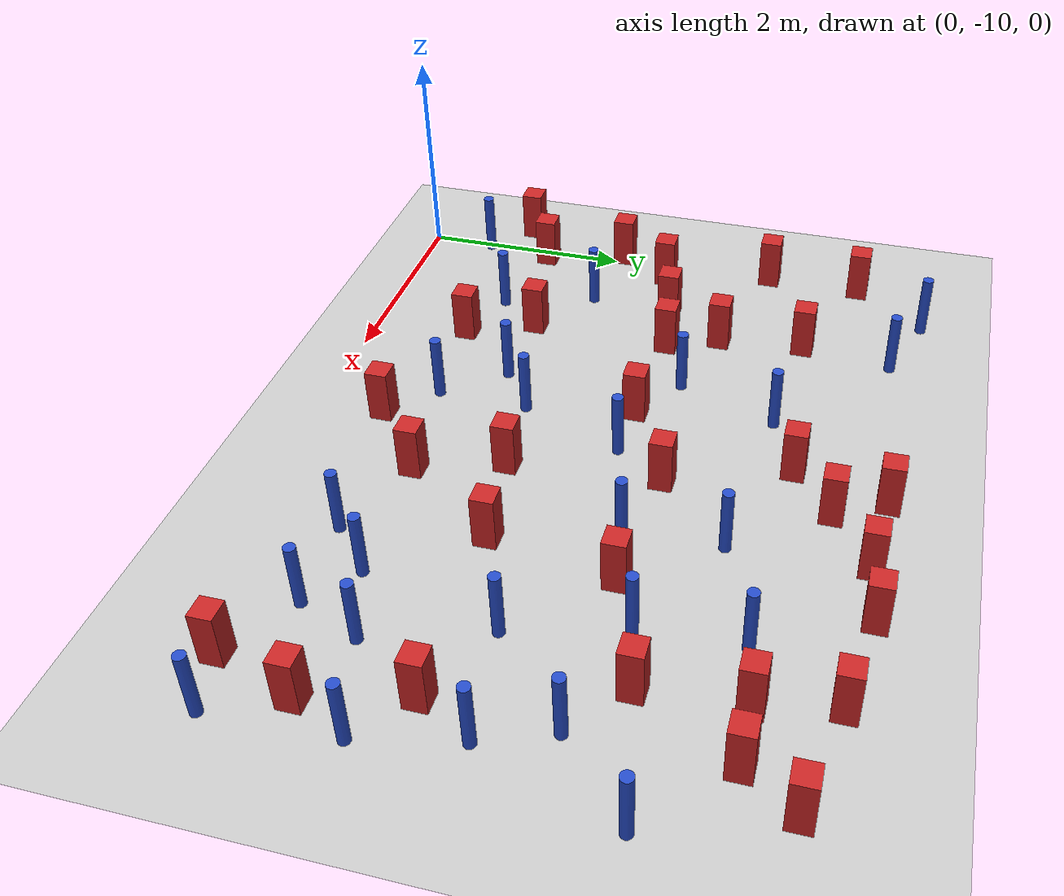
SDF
<sdf version="1.6">
 <world name="default">
  <model name="ground_plane">
   <static>1</static>
   <link name="link">
    <collision name="collision">
     <geometry><plane><normal>0 0 1</normal><size>100 100</size></plane></geometry>
     <surface><friction><ode><mu>100</mu><mu2>50</mu2></ode></friction></surface>
    </collision>
    <visual name="visual">
     <cast_shadows>0</cast_shadows>
     <geometry><plane><normal>0 0 1</normal><size>100 100</size></plane></geometry>
     <material>
      <ambient>1.0 1.0 1.0 1.0</ambient>
      <diffuse>0.8 0.8 0.8 1.0</diffuse>
      <specular>0.01 0.01 0.01 1.000000</specular>
     </material>
    </visual>
   </link>
  </model>
  <model name="square_post_obstacle1">
   <static>true</static>
   <pose>1.34976444259 -7.16266621479 8.22691968438e-08 7.2212513382e-06 -7.54495500217e-07 2.29674213826e-05</pose>
   <link name="link">
    <pose>0 0 0.25 0 -0 0</pose>
    <inertial>
     <mass>100</mass>
     <inertia>
      <ixx>0.166667</ixx>
      <ixy>0</ixy>
      <ixz>0</ixz>
      <iyy>0.166667</iyy>
      <iyz>0</iyz>
      <izz>0.166667</izz>
     </inertia>
    </inertial>
    <collision name="collision"><geometry><box><size>.2 .2 .5</size></box></geometry></collision>
    <visual name="visual">
     <geometry><box><size>.2 .2 .5</size></box></geometry>
     <material>
      <script><name>Gazebo/Red</name><uri>file://media/materials/scripts/gazebo.material</uri></script>
     </material>
    </visual>
   </link>
  </model>
  <model name="pole_obstacle4">
   <static>true</static>
   <pose>0.0471229709051 -9.3753185863 2.88873142074e-08 -9.90536690996e-09 4.60219948962e-07 -1.20965994979e-07</pose>
   <link name="link">
    <pose>0 0 0.3 0 -0 0</pose>
    <inertial>
     <mass>1</mass>
     <inertia><ixx>0.145833</ixx><ixy>0</ixy><ixz>0</ixz><iyy>0.145833</iyy><iyz>0</iyz><izz>0.125</izz></inertia>
    </inertial>
    <collision name="collision">
     <geometry><cylinder><radius>0.05</radius><length>.6</length></cylinder></geometry>
    </collision>
    <visual name="visual">
     <geometry><cylinder><radius>0.05</radius><length>.6</length></cylinder></geometry>
     <material>
      <script><name>Gazebo/Blue</name><uri>file://media/materials/scripts/gazebo.material</uri></script>
     </material>
    </visual>
   </link>
  </model>
  <model name="pole_obstacle7">
   <static>true</static>
   <pose>3.92263139561 -6.95824862448 2.88873142074e-08 -9.90536689859e-09 4.60219948989e-07 -1.20965994961e-07</pose>
   <link name="link">
    <pose>0 0 0.3 0 -0 0</pose>
    <inertial>
     <mass>1</mass>
     <inertia><ixx>0.145833</ixx><ixy>0</ixy><ixz>0</ixz><iyy>0.145833</iyy><iyz>0</iyz><izz>0.125</izz></inertia>
    </inertial>
    <collision name="collision">
     <geometry><cylinder><radius>0.05</radius><length>.6</length></cylinder></geometry>
    </collision>
    <visual name="visual">
     <geometry><cylinder><radius>0.05</radius><length>.6</length></cylinder></geometry>
     <material>
      <script><name>Gazebo/Blue</name><uri>file://media/materials/scripts/gazebo.material</uri></script>
     </material>
    </visual>
   </link>
  </model>
  <model name="pole_obstacle8">
   <static>true</static>
   <pose>6.26670397451 -8.30365633751 2.88873142074e-08 -9.9053668967e-09 4.60219948993e-07 -1.20965994957e-07</pose>
   <link name="link">
    <pose>0 0 0.3 0 -0 0</pose>
    <inertial>
     <mass>1</mass>
     <inertia><ixx>0.145833</ixx><ixy>0</ixy><ixz>0</ixz><iyy>0.145833</iyy><iyz>0</iyz><izz>0.125</izz></inertia>
    </inertial>
    <collision name="collision">
     <geometry><cylinder><radius>0.05</radius><length>.6</length></cylinder></geometry>
    </collision>
    <visual name="visual">
     <geometry><cylinder><radius>0.05</radius><length>.6</length></cylinder></geometry>
     <material>
      <script><name>Gazebo/Blue</name><uri>file://media/materials/scripts/gazebo.material</uri></script>
     </material>
    </visual>
   </link>
  </model>
  <model name="square_post_obstacle7">
   <static>true</static>
   <pose>-0.357960590281 -9.00568446626 8.22691968438e-08 7.22125133819e-06 -7.54495500217e-07 2.29674213826e-05</pose>
   <link name="link">
    <pose>0 0 0.25 0 -0 0</pose>
    <inertial>
     <mass>100</mass>
     <inertia>
      <ixx>0.166667</ixx>
      <ixy>0</ixy>
      <ixz>0</ixz>
      <iyy>0.166667</iyy>
      <iyz>0</iyz>
      <izz>0.166667</izz>
     </inertia>
    </inertial>
    <collision name="collision"><geometry><box><size>.2 .2 .5</size></box></geometry></collision>
    <visual name="visual">
     <geometry><box><size>.2 .2 .5</size></box></geometry>
     <material>
      <script><name>Gazebo/Red</name><uri>file://media/materials/scripts/gazebo.material</uri></script>
     </material>
    </visual>
   </link>
  </model>
  <model name="pole_obstacle13">
   <static>true</static>
   <pose>4.4009780181 -9.17855342326 2.88873142074e-08 -9.9053668967e-09 4.60219948993e-07 -1.20965994957e-07</pose>
   <link name="link">
    <pose>0 0 0.3 0 -0 0</pose>
    <inertial>
     <mass>1</mass>
     <inertia><ixx>0.145833</ixx><ixy>0</ixy><ixz>0</ixz><iyy>0.145833</iyy><iyz>0</iyz><izz>0.125</izz></inertia>
    </inertial>
    <collision name="collision">
     <geometry><cylinder><radius>0.05</radius><length>.6</length></cylinder></geometry>
    </collision>
    <visual name="visual">
     <geometry><cylinder><radius>0.05</radius><length>.6</length></cylinder></geometry>
     <material>
      <script><name>Gazebo/Blue</name><uri>file://media/materials/scripts/gazebo.material</uri></script>
     </material>
    </visual>
   </link>
  </model>
  <model name="pole_obstacle22">
   <static>true</static>
   <pose>5.11384237287 -7.59006557661 2.88873142074e-08 -9.90536690842e-09 4.60219948965e-07 -1.20965994976e-07</pose>
   <link name="link">
    <pose>0 0 0.3 0 -0 0</pose>
    <inertial>
     <mass>1</mass>
     <inertia><ixx>0.145833</ixx><ixy>0</ixy><ixz>0</ixz><iyy>0.145833</iyy><iyz>0</iyz><izz>0.125</izz></inertia>
    </inertial>
    <collision name="collision">
     <geometry><cylinder><radius>0.05</radius><length>.6</length></cylinder></geometry>
    </collision>
    <visual name="visual">
     <geometry><cylinder><radius>0.05</radius><length>.6</length></cylinder></geometry>
     <material>
      <script><name>Gazebo/Blue</name><uri>file://media/materials/scripts/gazebo.material</uri></script>
     </material>
    </visual>
   </link>
  </model>
  <model name="pole_obstacle23">
   <static>true</static>
   <pose>4.80086659203 -8.80640798107 2.88873142074e-08 -9.9053668967e-09 4.60219948993e-07 -1.20965994957e-07</pose>
   <link name="link">
    <pose>0 0 0.3 0 -0 0</pose>
    <inertial>
     <mass>1</mass>
     <inertia><ixx>0.145833</ixx><ixy>0</ixy><ixz>0</ixz><iyy>0.145833</iyy><iyz>0</iyz><izz>0.125</izz></inertia>
    </inertial>
    <collision name="collision">
     <geometry><cylinder><radius>0.05</radius><length>.6</length></cylinder></geometry>
    </collision>
    <visual name="visual">
     <geometry><cylinder><radius>0.05</radius><length>.6</length></cylinder></geometry>
     <material>
      <script><name>Gazebo/Blue</name><uri>file://media/materials/scripts/gazebo.material</uri></script>
     </material>
    </visual>
   </link>
  </model>
  <model name="square_post_obstacle18">
   <static>true</static>
   <pose>6.10811297865 -5.22534100473 8.22691968438e-08 7.2212513382e-06 -7.54495500217e-07 2.29674213826e-05</pose>
   <link name="link">
    <pose>0 0 0.25 0 -0 0</pose>
    <inertial>
     <mass>100</mass>
     <inertia>
      <ixx>0.166667</ixx>
      <ixy>0</ixy>
      <ixz>0</ixz>
      <iyy>0.166667</iyy>
      <iyz>0</iyz>
      <izz>0.166667</izz>
     </inertia>
    </inertial>
    <collision name="collision"><geometry><box><size>.2 .2 .5</size></box></geometry></collision>
    <visual name="visual">
     <geometry><box><size>.2 .2 .5</size></box></geometry>
     <material>
      <script><name>Gazebo/Red</name><uri>file://media/materials/scripts/gazebo.material</uri></script>
     </material>
    </visual>
   </link>
  </model>
  <model name="pole_obstacle25">
   <static>true</static>
   <pose>2.13632343708 -8.49517083925 2.88873142074e-08 -9.90536692318e-09 4.6021994893e-07 -1.20965994988e-07</pose>
   <link name="link">
    <pose>0 0 0.3 0 -0 0</pose>
    <inertial>
     <mass>1</mass>
     <inertia><ixx>0.145833</ixx><ixy>0</ixy><ixz>0</ixz><iyy>0.145833</iyy><iyz>0</iyz><izz>0.125</izz></inertia>
    </inertial>
    <collision name="collision">
     <geometry><cylinder><radius>0.05</radius><length>.6</length></cylinder></geometry>
    </collision>
    <visual name="visual">
     <geometry><cylinder><radius>0.05</radius><length>.6</length></cylinder></geometry>
     <material>
      <script><name>Gazebo/Blue</name><uri>file://media/materials/scripts/gazebo.material</uri></script>
     </material>
    </visual>
   </link>
  </model>
  <model name="square_post_obstacle25">
   <static>true</static>
   <pose>3.81873314155 -4.985388653 8.22691968438e-08 7.2212513382e-06 -7.54495500217e-07 2.29674213826e-05</pose>
   <link name="link">
    <pose>0 0 0.25 0 -0 0</pose>
    <inertial>
     <mass>100</mass>
     <inertia>
      <ixx>0.166667</ixx>
      <ixy>0</ixy>
      <ixz>0</ixz>
      <iyy>0.166667</iyy>
      <iyz>0</iyz>
      <izz>0.166667</izz>
     </inertia>
    </inertial>
    <collision name="collision"><geometry><box><size>.2 .2 .5</size></box></geometry></collision>
    <visual name="visual">
     <geometry><box><size>.2 .2 .5</size></box></geometry>
     <material>
      <script><name>Gazebo/Red</name><uri>file://media/materials/scripts/gazebo.material</uri></script>
     </material>
    </visual>
   </link>
  </model>
  <model name="pole_obstacle33">
   <static>true</static>
   <pose>5.21338102896 -9.13032891597 2.88873142074e-08 -9.9053668967e-09 4.60219948993e-07 -1.20965994957e-07</pose>
   <link name="link">
    <pose>0 0 0.3 0 -0 0</pose>
    <inertial>
     <mass>1</mass>
     <inertia><ixx>0.145833</ixx><ixy>0</ixy><ixz>0</ixz><iyy>0.145833</iyy><iyz>0</iyz><izz>0.125</izz></inertia>
    </inertial>
    <collision name="collision">
     <geometry><cylinder><radius>0.05</radius><length>.6</length></cylinder></geometry>
    </collision>
    <visual name="visual">
     <geometry><cylinder><radius>0.05</radius><length>.6</length></cylinder></geometry>
     <material>
      <script><name>Gazebo/Blue</name><uri>file://media/materials/scripts/gazebo.material</uri></script>
     </material>
    </visual>
   </link>
  </model>
  <model name="pole_obstacle40">
   <static>true</static>
   <pose>5.43500808425 -8.57817081193 2.88873142074e-08 -9.9053668967e-09 4.60219948993e-07 -1.20965994957e-07</pose>
   <link name="link">
    <pose>0 0 0.3 0 -0 0</pose>
    <inertial>
     <mass>1</mass>
     <inertia><ixx>0.145833</ixx><ixy>0</ixy><ixz>0</ixz><iyy>0.145833</iyy><iyz>0</iyz><izz>0.125</izz></inertia>
    </inertial>
    <collision name="collision">
     <geometry><cylinder><radius>0.05</radius><length>.6</length></cylinder></geometry>
    </collision>
    <visual name="visual">
     <geometry><cylinder><radius>0.05</radius><length>.6</length></cylinder></geometry>
     <material>
      <script><name>Gazebo/Blue</name><uri>file://media/materials/scripts/gazebo.material</uri></script>
     </material>
    </visual>
   </link>
  </model>
  <model name="square_post_obstacle32">
   <static>true</static>
   <pose>3.23322665385 -6.78148725426 8.22691968438e-08 7.22125133819e-06 -7.54495500217e-07 2.29674213826e-05</pose>
   <link name="link">
    <pose>0 0 0.25 0 -0 0</pose>
    <inertial>
     <mass>100</mass>
     <inertia>
      <ixx>0.166667</ixx>
      <ixy>0</ixy>
      <ixz>0</ixz>
      <iyy>0.166667</iyy>
      <iyz>0</iyz>
      <izz>0.166667</izz>
     </inertia>
    </inertial>
    <collision name="collision"><geometry><box><size>.2 .2 .5</size></box></geometry></collision>
    <visual name="visual">
     <geometry><box><size>.2 .2 .5</size></box></geometry>
     <material>
      <script><name>Gazebo/Red</name><uri>file://media/materials/scripts/gazebo.material</uri></script>
     </material>
    </visual>
   </link>
  </model>
  <model name="square_post_obstacle39">
   <static>true</static>
   <pose>-0.0275031125796 -5.48431658548 8.22691968438e-08 7.22125133819e-06 -7.54495500217e-07 2.29674213826e-05</pose>
   <link name="link">
    <pose>0 0 0.25 0 -0 0</pose>
    <inertial>
     <mass>100</mass>
     <inertia>
      <ixx>0.166667</ixx>
      <ixy>0</ixy>
      <ixz>0</ixz>
      <iyy>0.166667</iyy>
      <iyz>0</iyz>
      <izz>0.166667</izz>
     </inertia>
    </inertial>
    <collision name="collision"><geometry><box><size>.2 .2 .5</size></box></geometry></collision>
    <visual name="visual">
     <geometry><box><size>.2 .2 .5</size></box></geometry>
     <material>
      <script><name>Gazebo/Red</name><uri>file://media/materials/scripts/gazebo.material</uri></script>
     </material>
    </visual>
   </link>
  </model>
  <model name="square_post_obstacle40">
   <static>true</static>
   <pose>3.58850300028 -8.86359649826 8.22691968438e-08 7.22125133819e-06 -7.54495500217e-07 2.29674213826e-05</pose>
   <link name="link">
    <pose>0 0 0.25 0 -0 0</pose>
    <inertial>
     <mass>100</mass>
     <inertia>
      <ixx>0.166667</ixx>
      <ixy>0</ixy>
      <ixz>0</ixz>
      <iyy>0.166667</iyy>
      <iyz>0</iyz>
      <izz>0.166667</izz>
     </inertia>
    </inertial>
    <collision name="collision"><geometry><box><size>.2 .2 .5</size></box></geometry></collision>
    <visual name="visual">
     <geometry><box><size>.2 .2 .5</size></box></geometry>
     <material>
      <script><name>Gazebo/Red</name><uri>file://media/materials/scripts/gazebo.material</uri></script>
     </material>
    </visual>
   </link>
  </model>
  <model name="square_post_obstacle49">
   <static>true</static>
   <pose>5.83121184268 -7.92832120423 8.22691968438e-08 7.2212513382e-06 -7.54495500217e-07 2.29674213826e-05</pose>
   <link name="link">
    <pose>0 0 0.25 0 -0 0</pose>
    <inertial>
     <mass>100</mass>
     <inertia>
      <ixx>0.166667</ixx>
      <ixy>0</ixy>
      <ixz>0</ixz>
      <iyy>0.166667</iyy>
      <iyz>0</iyz>
      <izz>0.166667</izz>
     </inertia>
    </inertial>
    <collision name="collision"><geometry><box><size>.2 .2 .5</size></box></geometry></collision>
    <visual name="visual">
     <geometry><box><size>.2 .2 .5</size></box></geometry>
     <material>
      <script><name>Gazebo/Red</name><uri>file://media/materials/scripts/gazebo.material</uri></script>
     </material>
    </visual>
   </link>
  </model>
  <model name="square_post_obstacle50">
   <static>true</static>
   <pose>4.22033398872 -7.97998142098 8.22691968438e-08 7.2212513382e-06 -7.54495500217e-07 2.29674213826e-05</pose>
   <link name="link">
    <pose>0 0 0.25 0 -0 0</pose>
    <inertial>
     <mass>100</mass>
     <inertia>
      <ixx>0.166667</ixx>
      <ixy>0</ixy>
      <ixz>0</ixz>
      <iyy>0.166667</iyy>
      <iyz>0</iyz>
      <izz>0.166667</izz>
     </inertia>
    </inertial>
    <collision name="collision"><geometry><box><size>.2 .2 .5</size></box></geometry></collision>
    <visual name="visual">
     <geometry><box><size>.2 .2 .5</size></box></geometry>
     <material>
      <script><name>Gazebo/Red</name><uri>file://media/materials/scripts/gazebo.material</uri></script>
     </material>
    </visual>
   </link>
  </model>
  <model name="pole_obstacle68">
   <static>true</static>
   <pose>1.1815871107 -5.0591975514 2.88873142074e-08 -9.90536689852e-09 4.60219948989e-07 -1.2096599496e-07</pose>
   <link name="link">
    <pose>0 0 0.3 0 -0 0</pose>
    <inertial>
     <mass>1</mass>
     <inertia><ixx>0.145833</ixx><ixy>0</ixy><ixz>0</ixz><iyy>0.145833</iyy><iyz>0</iyz><izz>0.125</izz></inertia>
    </inertial>
    <collision name="collision">
     <geometry><cylinder><radius>0.05</radius><length>.6</length></cylinder></geometry>
    </collision>
    <visual name="visual">
     <geometry><cylinder><radius>0.05</radius><length>.6</length></cylinder></geometry>
     <material>
      <script><name>Gazebo/Blue</name><uri>file://media/materials/scripts/gazebo.material</uri></script>
     </material>
    </visual>
   </link>
  </model>
  <model name="square_post_obstacle53">
   <static>true</static>
   <pose>2.84721252517 -5.72974179798 8.22691968438e-08 7.22125133819e-06 -7.54495500217e-07 2.29674213826e-05</pose>
   <link name="link">
    <pose>0 0 0.25 0 -0 0</pose>
    <inertial>
     <mass>100</mass>
     <inertia>
      <ixx>0.166667</ixx>
      <ixy>0</ixy>
      <ixz>0</ixz>
      <iyy>0.166667</iyy>
      <iyz>0</iyz>
      <izz>0.166667</izz>
     </inertia>
    </inertial>
    <collision name="collision"><geometry><box><size>.2 .2 .5</size></box></geometry></collision>
    <visual name="visual">
     <geometry><box><size>.2 .2 .5</size></box></geometry>
     <material>
      <script><name>Gazebo/Red</name><uri>file://media/materials/scripts/gazebo.material</uri></script>
     </material>
    </visual>
   </link>
  </model>
  <model name="square_post_obstacle55">
   <static>true</static>
   <pose>1.1520583302 -6.68716666345 8.22691968438e-08 7.2212513382e-06 -7.54495500217e-07 2.29674213826e-05</pose>
   <link name="link">
    <pose>0 0 0.25 0 -0 0</pose>
    <inertial>
     <mass>100</mass>
     <inertia>
      <ixx>0.166667</ixx>
      <ixy>0</ixy>
      <ixz>0</ixz>
      <iyy>0.166667</iyy>
      <iyz>0</iyz>
      <izz>0.166667</izz>
     </inertia>
    </inertial>
    <collision name="collision"><geometry><box><size>.2 .2 .5</size></box></geometry></collision>
    <visual name="visual">
     <geometry><box><size>.2 .2 .5</size></box></geometry>
     <material>
      <script><name>Gazebo/Red</name><uri>file://media/materials/scripts/gazebo.material</uri></script>
     </material>
    </visual>
   </link>
  </model>
  <model name="pole_obstacle71">
   <static>true</static>
   <pose>5.8572790613 -6.89138354037 2.88873142074e-08 -9.90536690842e-09 4.60219948965e-07 -1.20965994976e-07</pose>
   <link name="link">
    <pose>0 0 0.3 0 -0 0</pose>
    <inertial>
     <mass>1</mass>
     <inertia><ixx>0.145833</ixx><ixy>0</ixy><ixz>0</ixz><iyy>0.145833</iyy><iyz>0</iyz><izz>0.125</izz></inertia>
    </inertial>
    <collision name="collision">
     <geometry><cylinder><radius>0.05</radius><length>.6</length></cylinder></geometry>
    </collision>
    <visual name="visual">
     <geometry><cylinder><radius>0.05</radius><length>.6</length></cylinder></geometry>
     <material>
      <script><name>Gazebo/Blue</name><uri>file://media/materials/scripts/gazebo.material</uri></script>
     </material>
    </visual>
   </link>
  </model>
  <model name="pole_obstacle73">
   <static>true</static>
   <pose>0.480922882163 -4.81654892487 2.88873142074e-08 -9.90536689616e-09 4.60219948994e-07 -1.20965994955e-07</pose>
   <link name="link">
    <pose>0 0 0.3 0 -0 0</pose>
    <inertial>
     <mass>1</mass>
     <inertia><ixx>0.145833</ixx><ixy>0</ixy><ixz>0</ixz><iyy>0.145833</iyy><iyz>0</iyz><izz>0.125</izz></inertia>
    </inertial>
    <collision name="collision">
     <geometry><cylinder><radius>0.05</radius><length>.6</length></cylinder></geometry>
    </collision>
    <visual name="visual">
     <geometry><cylinder><radius>0.05</radius><length>.6</length></cylinder></geometry>
     <material>
      <script><name>Gazebo/Blue</name><uri>file://media/materials/scripts/gazebo.material</uri></script>
     </material>
    </visual>
   </link>
  </model>
  <model name="square_post_obstacle68">
   <static>true</static>
   <pose>5.3218380934 -5.67278428079 8.22691968438e-08 7.2212513382e-06 -7.54495500217e-07 2.29674213826e-05</pose>
   <link name="link">
    <pose>0 0 0.25 0 -0 0</pose>
    <inertial>
     <mass>100</mass>
     <inertia>
      <ixx>0.166667</ixx>
      <ixy>0</ixy>
      <ixz>0</ixz>
      <iyy>0.166667</iyy>
      <iyz>0</iyz>
      <izz>0.166667</izz>
     </inertia>
    </inertial>
    <collision name="collision"><geometry><box><size>.2 .2 .5</size></box></geometry></collision>
    <visual name="visual">
     <geometry><box><size>.2 .2 .5</size></box></geometry>
     <material>
      <script><name>Gazebo/Red</name><uri>file://media/materials/scripts/gazebo.material</uri></script>
     </material>
    </visual>
   </link>
  </model>
  <model name="square_post_obstacle79">
   <static>true</static>
   <pose>2.39853437666 -7.20955045813 8.22691968438e-08 7.2212513382e-06 -7.54495500217e-07 2.29674213826e-05</pose>
   <link name="link">
    <pose>0 0 0.25 0 -0 0</pose>
    <inertial>
     <mass>100</mass>
     <inertia>
      <ixx>0.166667</ixx>
      <ixy>0</ixy>
      <ixz>0</ixz>
      <iyy>0.166667</iyy>
      <iyz>0</iyz>
      <izz>0.166667</izz>
     </inertia>
    </inertial>
    <collision name="collision"><geometry><box><size>.2 .2 .5</size></box></geometry></collision>
    <visual name="visual">
     <geometry><box><size>.2 .2 .5</size></box></geometry>
     <material>
      <script><name>Gazebo/Red</name><uri>file://media/materials/scripts/gazebo.material</uri></script>
     </material>
    </visual>
   </link>
  </model>
  <model name="pole_obstacle103">
   <static>true</static>
   <pose>2.25066144728 -5.99067226006 2.88873142074e-08 -9.90536689859e-09 4.60219948989e-07 -1.20965994961e-07</pose>
   <link name="link">
    <pose>0 0 0.3 0 -0 0</pose>
    <inertial>
     <mass>1</mass>
     <inertia><ixx>0.145833</ixx><ixy>0</ixy><ixz>0</ixz><iyy>0.145833</iyy><iyz>0</iyz><izz>0.125</izz></inertia>
    </inertial>
    <collision name="collision">
     <geometry><cylinder><radius>0.05</radius><length>.6</length></cylinder></geometry>
    </collision>
    <visual name="visual">
     <geometry><cylinder><radius>0.05</radius><length>.6</length></cylinder></geometry>
     <material>
      <script><name>Gazebo/Blue</name><uri>file://media/materials/scripts/gazebo.material</uri></script>
     </material>
    </visual>
   </link>
  </model>
  <model name="square_post_obstacle98">
   <static>true</static>
   <pose>3.29817321597 -5.35506112153 8.22691968438e-08 7.22125133819e-06 -7.54495500217e-07 2.29674213826e-05</pose>
   <link name="link">
    <pose>0 0 0.25 0 -0 0</pose>
    <inertial>
     <mass>100</mass>
     <inertia>
      <ixx>0.166667</ixx>
      <ixy>0</ixy>
      <ixz>0</ixz>
      <iyy>0.166667</iyy>
      <iyz>0</iyz>
      <izz>0.166667</izz>
     </inertia>
    </inertial>
    <collision name="collision"><geometry><box><size>.2 .2 .5</size></box></geometry></collision>
    <visual name="visual">
     <geometry><box><size>.2 .2 .5</size></box></geometry>
     <material>
      <script><name>Gazebo/Red</name><uri>file://media/materials/scripts/gazebo.material</uri></script>
     </material>
    </visual>
   </link>
  </model>
  <model name="square_post_obstacle107">
   <static>true</static>
   <pose>2.94494231042 -9.39853002465 8.22691968438e-08 7.22125133819e-06 -7.54495500217e-07 2.29674213826e-05</pose>
   <link name="link">
    <pose>0 0 0.25 0 -0 0</pose>
    <inertial>
     <mass>100</mass>
     <inertia>
      <ixx>0.166667</ixx>
      <ixy>0</ixy>
      <ixz>0</ixz>
      <iyy>0.166667</iyy>
      <iyz>0</iyz>
      <izz>0.166667</izz>
     </inertia>
    </inertial>
    <collision name="collision"><geometry><box><size>.2 .2 .5</size></box></geometry></collision>
    <visual name="visual">
     <geometry><box><size>.2 .2 .5</size></box></geometry>
     <material>
      <script><name>Gazebo/Red</name><uri>file://media/materials/scripts/gazebo.material</uri></script>
     </material>
    </visual>
   </link>
  </model>
  <model name="square_post_obstacle111">
   <static>true</static>
   <pose>1.33769436635 -8.47378284706 8.22691968438e-08 7.22125133819e-06 -7.54495500217e-07 2.29674213826e-05</pose>
   <link name="link">
    <pose>0 0 0.25 0 -0 0</pose>
    <inertial>
     <mass>100</mass>
     <inertia>
      <ixx>0.166667</ixx>
      <ixy>0</ixy>
      <ixz>0</ixz>
      <iyy>0.166667</iyy>
      <iyz>0</iyz>
      <izz>0.166667</izz>
     </inertia>
    </inertial>
    <collision name="collision"><geometry><box><size>.2 .2 .5</size></box></geometry></collision>
    <visual name="visual">
     <geometry><box><size>.2 .2 .5</size></box></geometry>
     <material>
      <script><name>Gazebo/Red</name><uri>file://media/materials/scripts/gazebo.material</uri></script>
     </material>
    </visual>
   </link>
  </model>
  <model name="pole_obstacle116">
   <static>true</static>
   <pose>3.85425104106 -6.13127338022 2.88873142074e-08 -9.90536689859e-09 4.60219948989e-07 -1.20965994961e-07</pose>
   <link name="link">
    <pose>0 0 0.3 0 -0 0</pose>
    <inertial>
     <mass>1</mass>
     <inertia><ixx>0.145833</ixx><ixy>0</ixy><ixz>0</ixz><iyy>0.145833</iyy><iyz>0</iyz><izz>0.125</izz></inertia>
    </inertial>
    <collision name="collision">
     <geometry><cylinder><radius>0.05</radius><length>.6</length></cylinder></geometry>
    </collision>
    <visual name="visual">
     <geometry><cylinder><radius>0.05</radius><length>.6</length></cylinder></geometry>
     <material>
      <script><name>Gazebo/Blue</name><uri>file://media/materials/scripts/gazebo.material</uri></script>
     </material>
    </visual>
   </link>
  </model>
  <model name="square_post_obstacle118">
   <static>true</static>
   <pose>0.126069835648 -8.71049284232 8.22691968438e-08 7.22125133819e-06 -7.54495500217e-07 2.29674213826e-05</pose>
   <link name="link">
    <pose>0 0 0.25 0 -0 0</pose>
    <inertial>
     <mass>100</mass>
     <inertia>
      <ixx>0.166667</ixx>
      <ixy>0</ixy>
      <ixz>0</ixz>
      <iyy>0.166667</iyy>
      <iyz>0</iyz>
      <izz>0.166667</izz>
     </inertia>
    </inertial>
    <collision name="collision"><geometry><box><size>.2 .2 .5</size></box></geometry></collision>
    <visual name="visual">
     <geometry><box><size>.2 .2 .5</size></box></geometry>
     <material>
      <script><name>Gazebo/Red</name><uri>file://media/materials/scripts/gazebo.material</uri></script>
     </material>
    </visual>
   </link>
  </model>
  <model name="square_post_obstacle119">
   <static>true</static>
   <pose>5.39532233853 -6.502309828 8.22691968438e-08 7.22125133819e-06 -7.54495500217e-07 2.29674213826e-05</pose>
   <link name="link">
    <pose>0 0 0.25 0 -0 0</pose>
    <inertial>
     <mass>100</mass>
     <inertia>
      <ixx>0.166667</ixx>
      <ixy>0</ixy>
      <ixz>0</ixz>
      <iyy>0.166667</iyy>
      <iyz>0</iyz>
      <izz>0.166667</izz>
     </inertia>
    </inertial>
    <collision name="collision"><geometry><box><size>.2 .2 .5</size></box></geometry></collision>
    <visual name="visual">
     <geometry><box><size>.2 .2 .5</size></box></geometry>
     <material>
      <script><name>Gazebo/Red</name><uri>file://media/materials/scripts/gazebo.material</uri></script>
     </material>
    </visual>
   </link>
  </model>
  <model name="pole_obstacle122">
   <static>true</static>
   <pose>1.01902021092 -8.89545630741 2.88873142074e-08 -9.90536690572e-09 4.60219948972e-07 -1.20965994971e-07</pose>
   <link name="link">
    <pose>0 0 0.3 0 -0 0</pose>
    <inertial>
     <mass>1</mass>
     <inertia><ixx>0.145833</ixx><ixy>0</ixy><ixz>0</ixz><iyy>0.145833</iyy><iyz>0</iyz><izz>0.125</izz></inertia>
    </inertial>
    <collision name="collision">
     <geometry><cylinder><radius>0.05</radius><length>.6</length></cylinder></geometry>
    </collision>
    <visual name="visual">
     <geometry><cylinder><radius>0.05</radius><length>.6</length></cylinder></geometry>
     <material>
      <script><name>Gazebo/Blue</name><uri>file://media/materials/scripts/gazebo.material</uri></script>
     </material>
    </visual>
   </link>
  </model>
  <model name="pole_obstacle129">
   <static>true</static>
   <pose>1.91781525567 -6.89734169992 2.88873142074e-08 -9.90536689852e-09 4.60219948989e-07 -1.2096599496e-07</pose>
   <link name="link">
    <pose>0 0 0.3 0 -0 0</pose>
    <inertial>
     <mass>1</mass>
     <inertia><ixx>0.145833</ixx><ixy>0</ixy><ixz>0</ixz><iyy>0.145833</iyy><iyz>0</iyz><izz>0.125</izz></inertia>
    </inertial>
    <collision name="collision">
     <geometry><cylinder><radius>0.05</radius><length>.6</length></cylinder></geometry>
    </collision>
    <visual name="visual">
     <geometry><cylinder><radius>0.05</radius><length>.6</length></cylinder></geometry>
     <material>
      <script><name>Gazebo/Blue</name><uri>file://media/materials/scripts/gazebo.material</uri></script>
     </material>
    </visual>
   </link>
  </model>
  <model name="pole_obstacle130">
   <static>true</static>
   <pose>6.47195243707 -6.27981691743 2.88873142074e-08 -9.90536690842e-09 4.60219948965e-07 -1.20965994976e-07</pose>
   <link name="link">
    <pose>0 0 0.3 0 -0 0</pose>
    <inertial>
     <mass>1</mass>
     <inertia><ixx>0.145833</ixx><ixy>0</ixy><ixz>0</ixz><iyy>0.145833</iyy><iyz>0</iyz><izz>0.125</izz></inertia>
    </inertial>
    <collision name="collision">
     <geometry><cylinder><radius>0.05</radius><length>.6</length></cylinder></geometry>
    </collision>
    <visual name="visual">
     <geometry><cylinder><radius>0.05</radius><length>.6</length></cylinder></geometry>
     <material>
      <script><name>Gazebo/Blue</name><uri>file://media/materials/scripts/gazebo.material</uri></script>
     </material>
    </visual>
   </link>
  </model>
  <model name="pole_obstacle131">
   <static>true</static>
   <pose>0.742777803085 -8.04430499733 2.88873142074e-08 -9.90536687661e-09 4.60219949039e-07 -1.2096599494e-07</pose>
   <link name="link">
    <pose>0 0 0.3 0 -0 0</pose>
    <inertial>
     <mass>1</mass>
     <inertia><ixx>0.145833</ixx><ixy>0</ixy><ixz>0</ixz><iyy>0.145833</iyy><iyz>0</iyz><izz>0.125</izz></inertia>
    </inertial>
    <collision name="collision">
     <geometry><cylinder><radius>0.05</radius><length>.6</length></cylinder></geometry>
    </collision>
    <visual name="visual">
     <geometry><cylinder><radius>0.05</radius><length>.6</length></cylinder></geometry>
     <material>
      <script><name>Gazebo/Blue</name><uri>file://media/materials/scripts/gazebo.material</uri></script>
     </material>
    </visual>
   </link>
  </model>
  <model name="pole_obstacle138">
   <static>true</static>
   <pose>4.86910038969 -6.63911364676 2.88873142074e-08 -9.90536690842e-09 4.60219948965e-07 -1.20965994976e-07</pose>
   <link name="link">
    <pose>0 0 0.3 0 -0 0</pose>
    <inertial>
     <mass>1</mass>
     <inertia><ixx>0.145833</ixx><ixy>0</ixy><ixz>0</ixz><iyy>0.145833</iyy><iyz>0</iyz><izz>0.125</izz></inertia>
    </inertial>
    <collision name="collision">
     <geometry><cylinder><radius>0.05</radius><length>.6</length></cylinder></geometry>
    </collision>
    <visual name="visual">
     <geometry><cylinder><radius>0.05</radius><length>.6</length></cylinder></geometry>
     <material>
      <script><name>Gazebo/Blue</name><uri>file://media/materials/scripts/gazebo.material</uri></script>
     </material>
    </visual>
   </link>
  </model>
  <model name="square_post_obstacle153">
   <static>true</static>
   <pose>-0.041857445279 -6.38329489673 8.22691968438e-08 7.2212513382e-06 -7.54495500217e-07 2.29674213826e-05</pose>
   <link name="link">
    <pose>0 0 0.25 0 -0 0</pose>
    <inertial>
     <mass>100</mass>
     <inertia>
      <ixx>0.166667</ixx>
      <ixy>0</ixy>
      <ixz>0</ixz>
      <iyy>0.166667</iyy>
      <iyz>0</iyz>
      <izz>0.166667</izz>
     </inertia>
    </inertial>
    <collision name="collision"><geometry><box><size>.2 .2 .5</size></box></geometry></collision>
    <visual name="visual">
     <geometry><box><size>.2 .2 .5</size></box></geometry>
     <material>
      <script><name>Gazebo/Red</name><uri>file://media/materials/scripts/gazebo.material</uri></script>
     </material>
    </visual>
   </link>
  </model>
  <model name="pole_obstacle159">
   <static>true</static>
   <pose>2.93179528893 -7.24156973592 2.88873142074e-08 -9.90536689859e-09 4.60219948989e-07 -1.20965994961e-07</pose>
   <link name="link">
    <pose>0 0 0.3 0 -0 0</pose>
    <inertial>
     <mass>1</mass>
     <inertia><ixx>0.145833</ixx><ixy>0</ixy><ixz>0</ixz><iyy>0.145833</iyy><iyz>0</iyz><izz>0.125</izz></inertia>
    </inertial>
    <collision name="collision">
     <geometry><cylinder><radius>0.05</radius><length>.6</length></cylinder></geometry>
    </collision>
    <visual name="visual">
     <geometry><cylinder><radius>0.05</radius><length>.6</length></cylinder></geometry>
     <material>
      <script><name>Gazebo/Blue</name><uri>file://media/materials/scripts/gazebo.material</uri></script>
     </material>
    </visual>
   </link>
  </model>
  <model name="pole_obstacle160">
   <static>true</static>
   <pose>2.55299335019 -9.01728484763 2.88873142074e-08 -9.90536692318e-09 4.6021994893e-07 -1.20965994988e-07</pose>
   <link name="link">
    <pose>0 0 0.3 0 -0 0</pose>
    <inertial>
     <mass>1</mass>
     <inertia><ixx>0.145833</ixx><ixy>0</ixy><ixz>0</ixz><iyy>0.145833</iyy><iyz>0</iyz><izz>0.125</izz></inertia>
    </inertial>
    <collision name="collision">
     <geometry><cylinder><radius>0.05</radius><length>.6</length></cylinder></geometry>
    </collision>
    <visual name="visual">
     <geometry><cylinder><radius>0.05</radius><length>.6</length></cylinder></geometry>
     <material>
      <script><name>Gazebo/Blue</name><uri>file://media/materials/scripts/gazebo.material</uri></script>
     </material>
    </visual>
   </link>
  </model>
  <model name="pole_obstacle161">
   <static>true</static>
   <pose>2.57135297035 -8.18750641322 2.88873142074e-08 -9.90536692318e-09 4.6021994893e-07 -1.20965994988e-07</pose>
   <link name="link">
    <pose>0 0 0.3 0 -0 0</pose>
    <inertial>
     <mass>1</mass>
     <inertia><ixx>0.145833</ixx><ixy>0</ixy><ixz>0</ixz><iyy>0.145833</iyy><iyz>0</iyz><izz>0.125</izz></inertia>
    </inertial>
    <collision name="collision">
     <geometry><cylinder><radius>0.05</radius><length>.6</length></cylinder></geometry>
    </collision>
    <visual name="visual">
     <geometry><cylinder><radius>0.05</radius><length>.6</length></cylinder></geometry>
     <material>
      <script><name>Gazebo/Blue</name><uri>file://media/materials/scripts/gazebo.material</uri></script>
     </material>
    </visual>
   </link>
  </model>
  <model name="square_post_obstacle154">
   <static>true</static>
   <pose>1.59561542214 -9.09038332735 8.22691968438e-08 7.22125133819e-06 -7.54495500217e-07 2.29674213826e-05</pose>
   <link name="link">
    <pose>0 0 0.25 0 -0 0</pose>
    <inertial>
     <mass>100</mass>
     <inertia>
      <ixx>0.166667</ixx>
      <ixy>0</ixy>
      <ixz>0</ixz>
      <iyy>0.166667</iyy>
      <iyz>0</iyz>
      <izz>0.166667</izz>
     </inertia>
    </inertial>
    <collision name="collision"><geometry><box><size>.2 .2 .5</size></box></geometry></collision>
    <visual name="visual">
     <geometry><box><size>.2 .2 .5</size></box></geometry>
     <material>
      <script><name>Gazebo/Red</name><uri>file://media/materials/scripts/gazebo.material</uri></script>
     </material>
    </visual>
   </link>
  </model>
  <model name="square_post_obstacle156">
   <static>true</static>
   <pose>-0.0774381416998 -7.92443004311 8.22691968438e-08 7.2212513382e-06 -7.54495500217e-07 2.29674213826e-05</pose>
   <link name="link">
    <pose>0 0 0.25 0 -0 0</pose>
    <inertial>
     <mass>100</mass>
     <inertia>
      <ixx>0.166667</ixx>
      <ixy>0</ixy>
      <ixz>0</ixz>
      <iyy>0.166667</iyy>
      <iyz>0</iyz>
      <izz>0.166667</izz>
     </inertia>
    </inertial>
    <collision name="collision"><geometry><box><size>.2 .2 .5</size></box></geometry></collision>
    <visual name="visual">
     <geometry><box><size>.2 .2 .5</size></box></geometry>
     <material>
      <script><name>Gazebo/Red</name><uri>file://media/materials/scripts/gazebo.material</uri></script>
     </material>
    </visual>
   </link>
  </model>
  <model name="square_post_obstacle161">
   <static>true</static>
   <pose>3.34755850362 -8.10541488076 8.22691968438e-08 7.22125133819e-06 -7.54495500217e-07 2.29674213826e-05</pose>
   <link name="link">
    <pose>0 0 0.25 0 -0 0</pose>
    <inertial>
     <mass>100</mass>
     <inertia>
      <ixx>0.166667</ixx>
      <ixy>0</ixy>
      <ixz>0</ixz>
      <iyy>0.166667</iyy>
      <iyz>0</iyz>
      <izz>0.166667</izz>
     </inertia>
    </inertial>
    <collision name="collision"><geometry><box><size>.2 .2 .5</size></box></geometry></collision>
    <visual name="visual">
     <geometry><box><size>.2 .2 .5</size></box></geometry>
     <material>
      <script><name>Gazebo/Red</name><uri>file://media/materials/scripts/gazebo.material</uri></script>
     </material>
    </visual>
   </link>
  </model>
  <model name="square_post_obstacle169">
   <static>true</static>
   <pose>1.07262979111 -5.89479525121 8.22691968438e-08 7.2212513382e-06 -7.54495500217e-07 2.29674213826e-05</pose>
   <link name="link">
    <pose>0 0 0.25 0 -0 0</pose>
    <inertial>
     <mass>100</mass>
     <inertia>
      <ixx>0.166667</ixx>
      <ixy>0</ixy>
      <ixz>0</ixz>
      <iyy>0.166667</iyy>
      <iyz>0</iyz>
      <izz>0.166667</izz>
     </inertia>
    </inertial>
    <collision name="collision"><geometry><box><size>.2 .2 .5</size></box></geometry></collision>
    <visual name="visual">
     <geometry><box><size>.2 .2 .5</size></box></geometry>
     <material>
      <script><name>Gazebo/Red</name><uri>file://media/materials/scripts/gazebo.material</uri></script>
     </material>
    </visual>
   </link>
  </model>
  <model name="pole_obstacle180">
   <static>true</static>
   <pose>6.30725831165 -9.39239093414 2.88873142074e-08 -9.9053668967e-09 4.60219948993e-07 -1.20965994957e-07</pose>
   <link name="link">
    <pose>0 0 0.3 0 -0 0</pose>
    <inertial>
     <mass>1</mass>
     <inertia><ixx>0.145833</ixx><ixy>0</ixy><ixz>0</ixz><iyy>0.145833</iyy><iyz>0</iyz><izz>0.125</izz></inertia>
    </inertial>
    <collision name="collision">
     <geometry><cylinder><radius>0.05</radius><length>.6</length></cylinder></geometry>
    </collision>
    <visual name="visual">
     <geometry><cylinder><radius>0.05</radius><length>.6</length></cylinder></geometry>
     <material>
      <script><name>Gazebo/Blue</name><uri>file://media/materials/scripts/gazebo.material</uri></script>
     </material>
    </visual>
   </link>
  </model>
  <model name="square_post_obstacle194">
   <static>true</static>
   <pose>0.794260415714 -7.25709518403 8.22691968438e-08 7.2212513382e-06 -7.54495500217e-07 2.29674213826e-05</pose>
   <link name="link">
    <pose>0 0 0.25 0 -0 0</pose>
    <inertial>
     <mass>100</mass>
     <inertia>
      <ixx>0.166667</ixx>
      <ixy>0</ixy>
      <ixz>0</ixz>
      <iyy>0.166667</iyy>
      <iyz>0</iyz>
      <izz>0.166667</izz>
     </inertia>
    </inertial>
    <collision name="collision"><geometry><box><size>.2 .2 .5</size></box></geometry></collision>
    <visual name="visual">
     <geometry><box><size>.2 .2 .5</size></box></geometry>
     <material>
      <script><name>Gazebo/Red</name><uri>file://media/materials/scripts/gazebo.material</uri></script>
     </material>
    </visual>
   </link>
  </model>
  <model name="square_post_obstacle195">
   <static>true</static>
   <pose>6.05416811389 -8.77878328107 8.22691968438e-08 7.2212513382e-06 -7.54495500217e-07 2.29674213826e-05</pose>
   <link name="link">
    <pose>0 0 0.25 0 -0 0</pose>
    <inertial>
     <mass>100</mass>
     <inertia>
      <ixx>0.166667</ixx>
      <ixy>0</ixy>
      <ixz>0</ixz>
      <iyy>0.166667</iyy>
      <iyz>0</iyz>
      <izz>0.166667</izz>
     </inertia>
    </inertial>
    <collision name="collision"><geometry><box><size>.2 .2 .5</size></box></geometry></collision>
    <visual name="visual">
     <geometry><box><size>.2 .2 .5</size></box></geometry>
     <material>
      <script><name>Gazebo/Red</name><uri>file://media/materials/scripts/gazebo.material</uri></script>
     </material>
    </visual>
   </link>
  </model>
  <model name="square_post_obstacle196">
   <static>true</static>
   <pose>4.41794768593 -6.87148551211 8.22691968438e-08 7.22125133819e-06 -7.54495500217e-07 2.29674213826e-05</pose>
   <link name="link">
    <pose>0 0 0.25 0 -0 0</pose>
    <inertial>
     <mass>100</mass>
     <inertia>
      <ixx>0.166667</ixx>
      <ixy>0</ixy>
      <ixz>0</ixz>
      <iyy>0.166667</iyy>
      <iyz>0</iyz>
      <izz>0.166667</izz>
     </inertia>
    </inertial>
    <collision name="collision"><geometry><box><size>.2 .2 .5</size></box></geometry></collision>
    <visual name="visual">
     <geometry><box><size>.2 .2 .5</size></box></geometry>
     <material>
      <script><name>Gazebo/Red</name><uri>file://media/materials/scripts/gazebo.material</uri></script>
     </material>
    </visual>
   </link>
  </model>
  <model name="pole_obstacle194">
   <static>true</static>
   <pose>6.08140231317 -7.46991613026 2.88873142074e-08 -9.90536690842e-09 4.60219948965e-07 -1.20965994976e-07</pose>
   <link name="link">
    <pose>0 0 0.3 0 -0 0</pose>
    <inertial>
     <mass>1</mass>
     <inertia><ixx>0.145833</ixx><ixy>0</ixy><ixz>0</ixz><iyy>0.145833</iyy><iyz>0</iyz><izz>0.125</izz></inertia>
    </inertial>
    <collision name="collision">
     <geometry><cylinder><radius>0.05</radius><length>.6</length></cylinder></geometry>
    </collision>
    <visual name="visual">
     <geometry><cylinder><radius>0.05</radius><length>.6</length></cylinder></geometry>
     <material>
      <script><name>Gazebo/Blue</name><uri>file://media/materials/scripts/gazebo.material</uri></script>
     </material>
    </visual>
   </link>
  </model>
  <model name="pole_obstacle206">
   <static>true</static>
   <pose>4.80904320108 -5.77827617324 2.88873142074e-08 -9.90536690842e-09 4.60219948965e-07 -1.20965994976e-07</pose>
   <link name="link">
    <pose>0 0 0.3 0 -0 0</pose>
    <inertial>
     <mass>1</mass>
     <inertia><ixx>0.145833</ixx><ixy>0</ixy><ixz>0</ixz><iyy>0.145833</iyy><iyz>0</iyz><izz>0.125</izz></inertia>
    </inertial>
    <collision name="collision">
     <geometry><cylinder><radius>0.05</radius><length>.6</length></cylinder></geometry>
    </collision>
    <visual name="visual">
     <geometry><cylinder><radius>0.05</radius><length>.6</length></cylinder></geometry>
     <material>
      <script><name>Gazebo/Blue</name><uri>file://media/materials/scripts/gazebo.material</uri></script>
     </material>
    </visual>
   </link>
  </model>
  <model name="square_post_obstacle210">
   <static>true</static>
   <pose>5.81515003262 -9.49237003534 8.22691968438e-08 7.22125133819e-06 -7.54495500217e-07 2.29674213826e-05</pose>
   <link name="link">
    <pose>0 0 0.25 0 -0 0</pose>
    <inertial>
     <mass>100</mass>
     <inertia>
      <ixx>0.166667</ixx>
      <ixy>0</ixy>
      <ixz>0</ixz>
      <iyy>0.166667</iyy>
      <iyz>0</iyz>
      <izz>0.166667</izz>
     </inertia>
    </inertial>
    <collision name="collision"><geometry><box><size>.2 .2 .5</size></box></geometry></collision>
    <visual name="visual">
     <geometry><box><size>.2 .2 .5</size></box></geometry>
     <material>
      <script><name>Gazebo/Red</name><uri>file://media/materials/scripts/gazebo.material</uri></script>
     </material>
    </visual>
   </link>
  </model>
  <model name="square_post_obstacle223">
   <static>true</static>
   <pose>4.35008003262 -4.90508003534 8.22691968438e-08 7.2212513382e-06 -7.54495500217e-07 2.29674213826e-05</pose>
   <link name="link">
    <pose>0 0 0.25 0 -0 0</pose>
    <inertial>
     <mass>100</mass>
     <inertia>
      <ixx>0.166667</ixx>
      <ixy>0</ixy>
      <ixz>0</ixz>
      <iyy>0.166667</iyy>
      <iyz>0</iyz>
      <izz>0.166667</izz>
     </inertia>
    </inertial>
    <collision name="collision"><geometry><box><size>.2 .2 .5</size></box></geometry></collision>
    <visual name="visual">
     <geometry><box><size>.2 .2 .5</size></box></geometry>
     <material>
      <script><name>Gazebo/Red</name><uri>file://media/materials/scripts/gazebo.material</uri></script>
     </material>
    </visual>
   </link>
  </model>
  <model name="square_post_obstacle224">
   <static>true</static>
   <pose>0.207831032622 -7.42270003534 8.22691968438e-08 7.2212513382e-06 -7.54495500217e-07 2.29674213826e-05</pose>
   <link name="link">
    <pose>0 0 0.25 0 -0 0</pose>
    <inertial>
     <mass>100</mass>
     <inertia>
      <ixx>0.166667</ixx>
      <ixy>0</ixy>
      <ixz>0</ixz>
      <iyy>0.166667</iyy>
      <iyz>0</iyz>
      <izz>0.166667</izz>
     </inertia>
    </inertial>
    <collision name="collision"><geometry><box><size>.2 .2 .5</size></box></geometry></collision>
    <visual name="visual">
     <geometry><box><size>.2 .2 .5</size></box></geometry>
     <material>
      <script><name>Gazebo/Red</name><uri>file://media/materials/scripts/gazebo.material</uri></script>
     </material>
    </visual>
   </link>
  </model>
  <model name="square_post_obstacle227">
   <static>true</static>
   <pose>5.83868003262 -5.65991003534 8.22691968438e-08 7.2212513382e-06 -7.54495500217e-07 2.29674213826e-05</pose>
   <link name="link">
    <pose>0 0 0.25 0 -0 0</pose>
    <inertial>
     <mass>100</mass>
     <inertia>
      <ixx>0.166667</ixx>
      <ixy>0</ixy>
      <ixz>0</ixz>
      <iyy>0.166667</iyy>
      <iyz>0</iyz>
      <izz>0.166667</izz>
     </inertia>
    </inertial>
    <collision name="collision"><geometry><box><size>.2 .2 .5</size></box></geometry></collision>
    <visual name="visual">
     <geometry><box><size>.2 .2 .5</size></box></geometry>
     <material>
      <script><name>Gazebo/Red</name><uri>file://media/materials/scripts/gazebo.material</uri></script>
     </material>
    </visual>
   </link>
  </model>
  <model name="square_post_obstacle229">
   <static>true</static>
   <pose>3.05906003262 -4.91531003534 8.22691968438e-08 7.2212513382e-06 -7.54495500217e-07 2.29674213826e-05</pose>
   <link name="link">
    <pose>0 0 0.25 0 -0 0</pose>
    <inertial>
     <mass>100</mass>
     <inertia>
      <ixx>0.166667</ixx>
      <ixy>0</ixy>
      <ixz>0</ixz>
      <iyy>0.166667</iyy>
      <iyz>0</iyz>
      <izz>0.166667</izz>
     </inertia>
    </inertial>
    <collision name="collision"><geometry><box><size>.2 .2 .5</size></box></geometry></collision>
    <visual name="visual">
     <geometry><box><size>.2 .2 .5</size></box></geometry>
     <material>
      <script><name>Gazebo/Red</name><uri>file://media/materials/scripts/gazebo.material</uri></script>
     </material>
    </visual>
   </link>
  </model>
  <model name="square_post_obstacle237">
   <static>true</static>
   <pose>5.20400003262 -5.03640003534 8.22691968438e-08 7.22125133819e-06 -7.54495500217e-07 2.29674213826e-05</pose>
   <link name="link">
    <pose>0 0 0.25 0 -0 0</pose>
    <inertial>
     <mass>100</mass>
     <inertia>
      <ixx>0.166667</ixx>
      <ixy>0</ixy>
      <ixz>0</ixz>
      <iyy>0.166667</iyy>
      <iyz>0</iyz>
      <izz>0.166667</izz>
     </inertia>
    </inertial>
    <collision name="collision"><geometry><box><size>.2 .2 .5</size></box></geometry></collision>
    <visual name="visual">
     <geometry><box><size>.2 .2 .5</size></box></geometry>
     <material>
      <script><name>Gazebo/Red</name><uri>file://media/materials/scripts/gazebo.material</uri></script>
     </material>
    </visual>
   </link>
  </model>
 </world>
</sdf>
